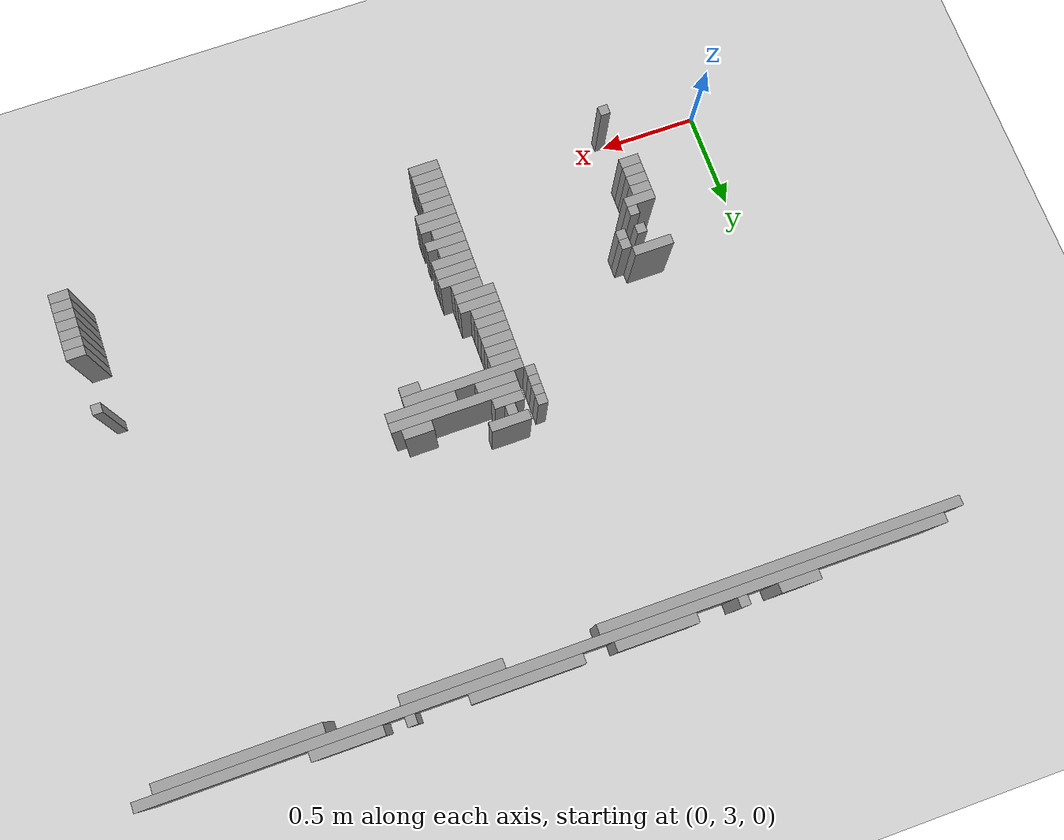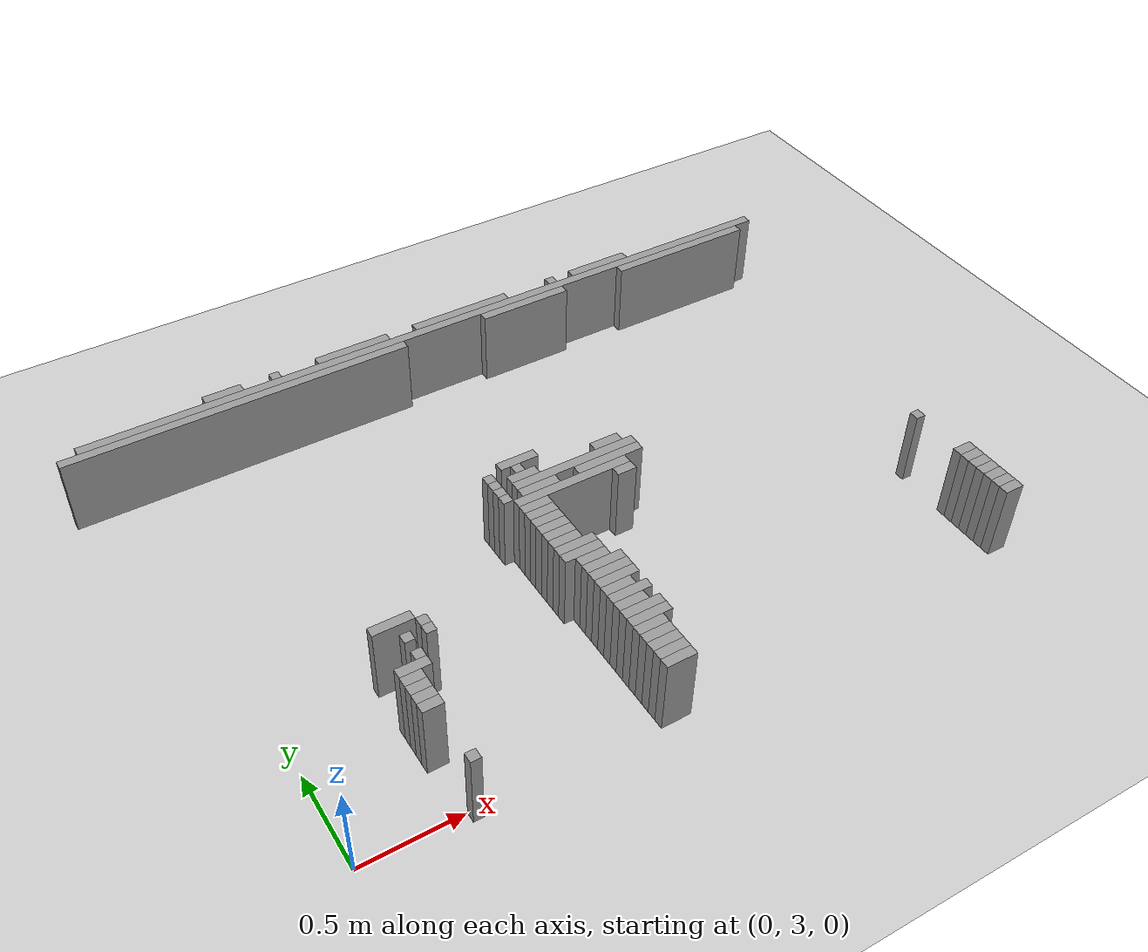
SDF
<sdf version="1.6">
 <world name="parking_mission">
  <include><uri>model://sun</uri></include>
  <include><uri>model://ground_plane</uri></include>
  <model name="wall_2">
   <static>true</static>
   <pose>0.5000 5.4750 0.2000 0 0 0</pose>
   <link name="link">
    <collision name="collision">
     <geometry><box><size>0.2000 0.0500 0.4000</size></box></geometry>
     <surface>
      <contact><ode><kp>20000.0</kp><kd>10.0</kd><max_vel>0.5</max_vel><min_depth>0.001</min_depth></ode></contact>
      <friction><ode><mu>1.0</mu><mu2>1.0</mu2></ode></friction>
     </surface>
    </collision>
    <visual name="visual">
     <geometry><box><size>0.2000 0.0500 0.4000</size></box></geometry>
     <material>
      <script><name>Gazebo/Grey</name><uri>file://media/materials/scripts/gazebo.material</uri></script>
     </material>
    </visual>
   </link>
  </model>
  <model name="wall_3">
   <static>true</static>
   <pose>0.7750 5.4750 0.2000 0 0 0</pose>
   <link name="link">
    <collision name="collision">
     <geometry><box><size>0.0500 0.0500 0.4000</size></box></geometry>
     <surface>
      <contact><ode><kp>20000.0</kp><kd>10.0</kd><max_vel>0.5</max_vel><min_depth>0.001</min_depth></ode></contact>
      <friction><ode><mu>1.0</mu><mu2>1.0</mu2></ode></friction>
     </surface>
    </collision>
    <visual name="visual">
     <geometry><box><size>0.0500 0.0500 0.4000</size></box></geometry>
     <material>
      <script><name>Gazebo/Grey</name><uri>file://media/materials/scripts/gazebo.material</uri></script>
     </material>
    </visual>
   </link>
  </model>
  <model name="wall_4">
   <static>true</static>
   <pose>1.2000 5.4750 0.2000 0 0 0</pose>
   <link name="link">
    <collision name="collision">
     <geometry><box><size>0.4000 0.0500 0.4000</size></box></geometry>
     <surface>
      <contact><ode><kp>20000.0</kp><kd>10.0</kd><max_vel>0.5</max_vel><min_depth>0.001</min_depth></ode></contact>
      <friction><ode><mu>1.0</mu><mu2>1.0</mu2></ode></friction>
     </surface>
    </collision>
    <visual name="visual">
     <geometry><box><size>0.4000 0.0500 0.4000</size></box></geometry>
     <material>
      <script><name>Gazebo/Grey</name><uri>file://media/materials/scripts/gazebo.material</uri></script>
     </material>
    </visual>
   </link>
  </model>
  <model name="wall_5">
   <static>true</static>
   <pose>1.8250 5.4750 0.2000 0 0 0</pose>
   <link name="link">
    <collision name="collision">
     <geometry><box><size>0.5500 0.0500 0.4000</size></box></geometry>
     <surface>
      <contact><ode><kp>20000.0</kp><kd>10.0</kd><max_vel>0.5</max_vel><min_depth>0.001</min_depth></ode></contact>
      <friction><ode><mu>1.0</mu><mu2>1.0</mu2></ode></friction>
     </surface>
    </collision>
    <visual name="visual">
     <geometry><box><size>0.5500 0.0500 0.4000</size></box></geometry>
     <material>
      <script><name>Gazebo/Grey</name><uri>file://media/materials/scripts/gazebo.material</uri></script>
     </material>
    </visual>
   </link>
  </model>
  <model name="wall_6">
   <static>true</static>
   <pose>2.3750 5.4750 0.2000 0 0 0</pose>
   <link name="link">
    <collision name="collision">
     <geometry><box><size>0.0500 0.0500 0.4000</size></box></geometry>
     <surface>
      <contact><ode><kp>20000.0</kp><kd>10.0</kd><max_vel>0.5</max_vel><min_depth>0.001</min_depth></ode></contact>
      <friction><ode><mu>1.0</mu><mu2>1.0</mu2></ode></friction>
     </surface>
    </collision>
    <visual name="visual">
     <geometry><box><size>0.0500 0.0500 0.4000</size></box></geometry>
     <material>
      <script><name>Gazebo/Grey</name><uri>file://media/materials/scripts/gazebo.material</uri></script>
     </material>
    </visual>
   </link>
  </model>
  <model name="wall_7">
   <static>true</static>
   <pose>2.6750 5.4750 0.2000 0 0 0</pose>
   <link name="link">
    <collision name="collision">
     <geometry><box><size>0.3500 0.0500 0.4000</size></box></geometry>
     <surface>
      <contact><ode><kp>20000.0</kp><kd>10.0</kd><max_vel>0.5</max_vel><min_depth>0.001</min_depth></ode></contact>
      <friction><ode><mu>1.0</mu><mu2>1.0</mu2></ode></friction>
     </surface>
    </collision>
    <visual name="visual">
     <geometry><box><size>0.3500 0.0500 0.4000</size></box></geometry>
     <material>
      <script><name>Gazebo/Grey</name><uri>file://media/materials/scripts/gazebo.material</uri></script>
     </material>
    </visual>
   </link>
  </model>
  <model name="wall_9">
   <static>true</static>
   <pose>1.7000 5.4250 0.2000 0 0 0</pose>
   <link name="link">
    <collision name="collision">
     <geometry><box><size>3.9000 0.0500 0.4000</size></box></geometry>
     <surface>
      <contact><ode><kp>20000.0</kp><kd>10.0</kd><max_vel>0.5</max_vel><min_depth>0.001</min_depth></ode></contact>
      <friction><ode><mu>1.0</mu><mu2>1.0</mu2></ode></friction>
     </surface>
    </collision>
    <visual name="visual">
     <geometry><box><size>3.9000 0.0500 0.4000</size></box></geometry>
     <material>
      <script><name>Gazebo/Grey</name><uri>file://media/materials/scripts/gazebo.material</uri></script>
     </material>
    </visual>
   </link>
  </model>
  <model name="wall_10">
   <static>true</static>
   <pose>0.5500 5.3750 0.2000 0 0 0</pose>
   <link name="link">
    <collision name="collision">
     <geometry><box><size>1.8000 0.0500 0.4000</size></box></geometry>
     <surface>
      <contact><ode><kp>20000.0</kp><kd>10.0</kd><max_vel>0.5</max_vel><min_depth>0.001</min_depth></ode></contact>
      <friction><ode><mu>1.0</mu><mu2>1.0</mu2></ode></friction>
     </surface>
    </collision>
    <visual name="visual">
     <geometry><box><size>1.8000 0.0500 0.4000</size></box></geometry>
     <material>
      <script><name>Gazebo/Grey</name><uri>file://media/materials/scripts/gazebo.material</uri></script>
     </material>
    </visual>
   </link>
  </model>
  <model name="wall_11">
   <static>true</static>
   <pose>2.1500 5.3750 0.2000 0 0 0</pose>
   <link name="link">
    <collision name="collision">
     <geometry><box><size>0.5000 0.0500 0.4000</size></box></geometry>
     <surface>
      <contact><ode><kp>20000.0</kp><kd>10.0</kd><max_vel>0.5</max_vel><min_depth>0.001</min_depth></ode></contact>
      <friction><ode><mu>1.0</mu><mu2>1.0</mu2></ode></friction>
     </surface>
    </collision>
    <visual name="visual">
     <geometry><box><size>0.5000 0.0500 0.4000</size></box></geometry>
     <material>
      <script><name>Gazebo/Grey</name><uri>file://media/materials/scripts/gazebo.material</uri></script>
     </material>
    </visual>
   </link>
  </model>
  <model name="wall_12">
   <static>true</static>
   <pose>3.1500 5.3750 0.2000 0 0 0</pose>
   <link name="link">
    <collision name="collision">
     <geometry><box><size>0.8000 0.0500 0.4000</size></box></geometry>
     <surface>
      <contact><ode><kp>20000.0</kp><kd>10.0</kd><max_vel>0.5</max_vel><min_depth>0.001</min_depth></ode></contact>
      <friction><ode><mu>1.0</mu><mu2>1.0</mu2></ode></friction>
     </surface>
    </collision>
    <visual name="visual">
     <geometry><box><size>0.8000 0.0500 0.4000</size></box></geometry>
     <material>
      <script><name>Gazebo/Grey</name><uri>file://media/materials/scripts/gazebo.material</uri></script>
     </material>
    </visual>
   </link>
  </model>
  <model name="wall_67">
   <static>true</static>
   <pose>1.5000 4.3250 0.2000 0 0 0</pose>
   <link name="link">
    <collision name="collision">
     <geometry><box><size>0.2000 0.0500 0.4000</size></box></geometry>
     <surface>
      <contact><ode><kp>20000.0</kp><kd>10.0</kd><max_vel>0.5</max_vel><min_depth>0.001</min_depth></ode></contact>
      <friction><ode><mu>1.0</mu><mu2>1.0</mu2></ode></friction>
     </surface>
    </collision>
    <visual name="visual">
     <geometry><box><size>0.2000 0.0500 0.4000</size></box></geometry>
     <material>
      <script><name>Gazebo/Grey</name><uri>file://media/materials/scripts/gazebo.material</uri></script>
     </material>
    </visual>
   </link>
  </model>
  <model name="wall_70">
   <static>true</static>
   <pose>1.3250 4.2750 0.2000 0 0 0</pose>
   <link name="link">
    <collision name="collision">
     <geometry><box><size>0.0500 0.0500 0.4000</size></box></geometry>
     <surface>
      <contact><ode><kp>20000.0</kp><kd>10.0</kd><max_vel>0.5</max_vel><min_depth>0.001</min_depth></ode></contact>
      <friction><ode><mu>1.0</mu><mu2>1.0</mu2></ode></friction>
     </surface>
    </collision>
    <visual name="visual">
     <geometry><box><size>0.0500 0.0500 0.4000</size></box></geometry>
     <material>
      <script><name>Gazebo/Grey</name><uri>file://media/materials/scripts/gazebo.material</uri></script>
     </material>
    </visual>
   </link>
  </model>
  <model name="wall_71">
   <static>true</static>
   <pose>1.4750 4.2750 0.2000 0 0 0</pose>
   <link name="link">
    <collision name="collision">
     <geometry><box><size>0.0500 0.0500 0.4000</size></box></geometry>
     <surface>
      <contact><ode><kp>20000.0</kp><kd>10.0</kd><max_vel>0.5</max_vel><min_depth>0.001</min_depth></ode></contact>
      <friction><ode><mu>1.0</mu><mu2>1.0</mu2></ode></friction>
     </surface>
    </collision>
    <visual name="visual">
     <geometry><box><size>0.0500 0.0500 0.4000</size></box></geometry>
     <material>
      <script><name>Gazebo/Grey</name><uri>file://media/materials/scripts/gazebo.material</uri></script>
     </material>
    </visual>
   </link>
  </model>
  <model name="wall_75">
   <static>true</static>
   <pose>1.3250 4.2250 0.2000 0 0 0</pose>
   <link name="link">
    <collision name="collision">
     <geometry><box><size>0.0500 0.0500 0.4000</size></box></geometry>
     <surface>
      <contact><ode><kp>20000.0</kp><kd>10.0</kd><max_vel>0.5</max_vel><min_depth>0.001</min_depth></ode></contact>
      <friction><ode><mu>1.0</mu><mu2>1.0</mu2></ode></friction>
     </surface>
    </collision>
    <visual name="visual">
     <geometry><box><size>0.0500 0.0500 0.4000</size></box></geometry>
     <material>
      <script><name>Gazebo/Grey</name><uri>file://media/materials/scripts/gazebo.material</uri></script>
     </material>
    </visual>
   </link>
  </model>
  <model name="wall_76">
   <static>true</static>
   <pose>1.4750 4.2250 0.2000 0 0 0</pose>
   <link name="link">
    <collision name="collision">
     <geometry><box><size>0.1500 0.0500 0.4000</size></box></geometry>
     <surface>
      <contact><ode><kp>20000.0</kp><kd>10.0</kd><max_vel>0.5</max_vel><min_depth>0.001</min_depth></ode></contact>
      <friction><ode><mu>1.0</mu><mu2>1.0</mu2></ode></friction>
     </surface>
    </collision>
    <visual name="visual">
     <geometry><box><size>0.1500 0.0500 0.4000</size></box></geometry>
     <material>
      <script><name>Gazebo/Grey</name><uri>file://media/materials/scripts/gazebo.material</uri></script>
     </material>
    </visual>
   </link>
  </model>
  <model name="wall_77">
   <static>true</static>
   <pose>1.9250 4.2250 0.2000 0 0 0</pose>
   <link name="link">
    <collision name="collision">
     <geometry><box><size>0.1500 0.0500 0.4000</size></box></geometry>
     <surface>
      <contact><ode><kp>20000.0</kp><kd>10.0</kd><max_vel>0.5</max_vel><min_depth>0.001</min_depth></ode></contact>
      <friction><ode><mu>1.0</mu><mu2>1.0</mu2></ode></friction>
     </surface>
    </collision>
    <visual name="visual">
     <geometry><box><size>0.1500 0.0500 0.4000</size></box></geometry>
     <material>
      <script><name>Gazebo/Grey</name><uri>file://media/materials/scripts/gazebo.material</uri></script>
     </material>
    </visual>
   </link>
  </model>
  <model name="wall_81">
   <static>true</static>
   <pose>1.3250 4.1750 0.2000 0 0 0</pose>
   <link name="link">
    <collision name="collision">
     <geometry><box><size>0.0500 0.0500 0.4000</size></box></geometry>
     <surface>
      <contact><ode><kp>20000.0</kp><kd>10.0</kd><max_vel>0.5</max_vel><min_depth>0.001</min_depth></ode></contact>
      <friction><ode><mu>1.0</mu><mu2>1.0</mu2></ode></friction>
     </surface>
    </collision>
    <visual name="visual">
     <geometry><box><size>0.0500 0.0500 0.4000</size></box></geometry>
     <material>
      <script><name>Gazebo/Grey</name><uri>file://media/materials/scripts/gazebo.material</uri></script>
     </material>
    </visual>
   </link>
  </model>
  <model name="wall_82">
   <static>true</static>
   <pose>1.7250 4.1750 0.2000 0 0 0</pose>
   <link name="link">
    <collision name="collision">
     <geometry><box><size>0.6500 0.0500 0.4000</size></box></geometry>
     <surface>
      <contact><ode><kp>20000.0</kp><kd>10.0</kd><max_vel>0.5</max_vel><min_depth>0.001</min_depth></ode></contact>
      <friction><ode><mu>1.0</mu><mu2>1.0</mu2></ode></friction>
     </surface>
    </collision>
    <visual name="visual">
     <geometry><box><size>0.6500 0.0500 0.4000</size></box></geometry>
     <material>
      <script><name>Gazebo/Grey</name><uri>file://media/materials/scripts/gazebo.material</uri></script>
     </material>
    </visual>
   </link>
  </model>
  <model name="wall_86">
   <static>true</static>
   <pose>1.3250 4.1250 0.2000 0 0 0</pose>
   <link name="link">
    <collision name="collision">
     <geometry><box><size>0.0500 0.0500 0.4000</size></box></geometry>
     <surface>
      <contact><ode><kp>20000.0</kp><kd>10.0</kd><max_vel>0.5</max_vel><min_depth>0.001</min_depth></ode></contact>
      <friction><ode><mu>1.0</mu><mu2>1.0</mu2></ode></friction>
     </surface>
    </collision>
    <visual name="visual">
     <geometry><box><size>0.0500 0.0500 0.4000</size></box></geometry>
     <material>
      <script><name>Gazebo/Grey</name><uri>file://media/materials/scripts/gazebo.material</uri></script>
     </material>
    </visual>
   </link>
  </model>
  <model name="wall_87">
   <static>true</static>
   <pose>1.5000 4.1250 0.2000 0 0 0</pose>
   <link name="link">
    <collision name="collision">
     <geometry><box><size>0.2000 0.0500 0.4000</size></box></geometry>
     <surface>
      <contact><ode><kp>20000.0</kp><kd>10.0</kd><max_vel>0.5</max_vel><min_depth>0.001</min_depth></ode></contact>
      <friction><ode><mu>1.0</mu><mu2>1.0</mu2></ode></friction>
     </surface>
    </collision>
    <visual name="visual">
     <geometry><box><size>0.2000 0.0500 0.4000</size></box></geometry>
     <material>
      <script><name>Gazebo/Grey</name><uri>file://media/materials/scripts/gazebo.material</uri></script>
     </material>
    </visual>
   </link>
  </model>
  <model name="wall_88">
   <static>true</static>
   <pose>1.8750 4.1250 0.2000 0 0 0</pose>
   <link name="link">
    <collision name="collision">
     <geometry><box><size>0.3500 0.0500 0.4000</size></box></geometry>
     <surface>
      <contact><ode><kp>20000.0</kp><kd>10.0</kd><max_vel>0.5</max_vel><min_depth>0.001</min_depth></ode></contact>
      <friction><ode><mu>1.0</mu><mu2>1.0</mu2></ode></friction>
     </surface>
    </collision>
    <visual name="visual">
     <geometry><box><size>0.3500 0.0500 0.4000</size></box></geometry>
     <material>
      <script><name>Gazebo/Grey</name><uri>file://media/materials/scripts/gazebo.material</uri></script>
     </material>
    </visual>
   </link>
  </model>
  <model name="wall_91">
   <static>true</static>
   <pose>1.6500 4.0750 0.2000 0 0 0</pose>
   <link name="link">
    <collision name="collision">
     <geometry><box><size>0.6000 0.0500 0.4000</size></box></geometry>
     <surface>
      <contact><ode><kp>20000.0</kp><kd>10.0</kd><max_vel>0.5</max_vel><min_depth>0.001</min_depth></ode></contact>
      <friction><ode><mu>1.0</mu><mu2>1.0</mu2></ode></friction>
     </surface>
    </collision>
    <visual name="visual">
     <geometry><box><size>0.6000 0.0500 0.4000</size></box></geometry>
     <material>
      <script><name>Gazebo/Grey</name><uri>file://media/materials/scripts/gazebo.material</uri></script>
     </material>
    </visual>
   </link>
  </model>
  <model name="wall_94">
   <static>true</static>
   <pose>1.4250 4.0250 0.2000 0 0 0</pose>
   <link name="link">
    <collision name="collision">
     <geometry><box><size>0.1500 0.0500 0.4000</size></box></geometry>
     <surface>
      <contact><ode><kp>20000.0</kp><kd>10.0</kd><max_vel>0.5</max_vel><min_depth>0.001</min_depth></ode></contact>
      <friction><ode><mu>1.0</mu><mu2>1.0</mu2></ode></friction>
     </surface>
    </collision>
    <visual name="visual">
     <geometry><box><size>0.1500 0.0500 0.4000</size></box></geometry>
     <material>
      <script><name>Gazebo/Grey</name><uri>file://media/materials/scripts/gazebo.material</uri></script>
     </material>
    </visual>
   </link>
  </model>
  <model name="wall_95">
   <static>true</static>
   <pose>1.9000 4.0250 0.2000 0 0 0</pose>
   <link name="link">
    <collision name="collision">
     <geometry><box><size>0.1000 0.0500 0.4000</size></box></geometry>
     <surface>
      <contact><ode><kp>20000.0</kp><kd>10.0</kd><max_vel>0.5</max_vel><min_depth>0.001</min_depth></ode></contact>
      <friction><ode><mu>1.0</mu><mu2>1.0</mu2></ode></friction>
     </surface>
    </collision>
    <visual name="visual">
     <geometry><box><size>0.1000 0.0500 0.4000</size></box></geometry>
     <material>
      <script><name>Gazebo/Grey</name><uri>file://media/materials/scripts/gazebo.material</uri></script>
     </material>
    </visual>
   </link>
  </model>
  <model name="wall_98">
   <static>true</static>
   <pose>1.4250 3.9750 0.2000 0 0 0</pose>
   <link name="link">
    <collision name="collision">
     <geometry><box><size>0.1500 0.0500 0.4000</size></box></geometry>
     <surface>
      <contact><ode><kp>20000.0</kp><kd>10.0</kd><max_vel>0.5</max_vel><min_depth>0.001</min_depth></ode></contact>
      <friction><ode><mu>1.0</mu><mu2>1.0</mu2></ode></friction>
     </surface>
    </collision>
    <visual name="visual">
     <geometry><box><size>0.1500 0.0500 0.4000</size></box></geometry>
     <material>
      <script><name>Gazebo/Grey</name><uri>file://media/materials/scripts/gazebo.material</uri></script>
     </material>
    </visual>
   </link>
  </model>
  <model name="wall_101">
   <static>true</static>
   <pose>1.4250 3.9250 0.2000 0 0 0</pose>
   <link name="link">
    <collision name="collision">
     <geometry><box><size>0.1500 0.0500 0.4000</size></box></geometry>
     <surface>
      <contact><ode><kp>20000.0</kp><kd>10.0</kd><max_vel>0.5</max_vel><min_depth>0.001</min_depth></ode></contact>
      <friction><ode><mu>1.0</mu><mu2>1.0</mu2></ode></friction>
     </surface>
    </collision>
    <visual name="visual">
     <geometry><box><size>0.1500 0.0500 0.4000</size></box></geometry>
     <material>
      <script><name>Gazebo/Grey</name><uri>file://media/materials/scripts/gazebo.material</uri></script>
     </material>
    </visual>
   </link>
  </model>
  <model name="wall_104">
   <static>true</static>
   <pose>1.4250 3.8750 0.2000 0 0 0</pose>
   <link name="link">
    <collision name="collision">
     <geometry><box><size>0.1500 0.0500 0.4000</size></box></geometry>
     <surface>
      <contact><ode><kp>20000.0</kp><kd>10.0</kd><max_vel>0.5</max_vel><min_depth>0.001</min_depth></ode></contact>
      <friction><ode><mu>1.0</mu><mu2>1.0</mu2></ode></friction>
     </surface>
    </collision>
    <visual name="visual">
     <geometry><box><size>0.1500 0.0500 0.4000</size></box></geometry>
     <material>
      <script><name>Gazebo/Grey</name><uri>file://media/materials/scripts/gazebo.material</uri></script>
     </material>
    </visual>
   </link>
  </model>
  <model name="wall_107">
   <static>true</static>
   <pose>1.4250 3.8250 0.2000 0 0 0</pose>
   <link name="link">
    <collision name="collision">
     <geometry><box><size>0.1500 0.0500 0.4000</size></box></geometry>
     <surface>
      <contact><ode><kp>20000.0</kp><kd>10.0</kd><max_vel>0.5</max_vel><min_depth>0.001</min_depth></ode></contact>
      <friction><ode><mu>1.0</mu><mu2>1.0</mu2></ode></friction>
     </surface>
    </collision>
    <visual name="visual">
     <geometry><box><size>0.1500 0.0500 0.4000</size></box></geometry>
     <material>
      <script><name>Gazebo/Grey</name><uri>file://media/materials/scripts/gazebo.material</uri></script>
     </material>
    </visual>
   </link>
  </model>
  <model name="wall_111">
   <static>true</static>
   <pose>1.4250 3.7750 0.2000 0 0 0</pose>
   <link name="link">
    <collision name="collision">
     <geometry><box><size>0.1500 0.0500 0.4000</size></box></geometry>
     <surface>
      <contact><ode><kp>20000.0</kp><kd>10.0</kd><max_vel>0.5</max_vel><min_depth>0.001</min_depth></ode></contact>
      <friction><ode><mu>1.0</mu><mu2>1.0</mu2></ode></friction>
     </surface>
    </collision>
    <visual name="visual">
     <geometry><box><size>0.1500 0.0500 0.4000</size></box></geometry>
     <material>
      <script><name>Gazebo/Grey</name><uri>file://media/materials/scripts/gazebo.material</uri></script>
     </material>
    </visual>
   </link>
  </model>
  <model name="wall_116">
   <static>true</static>
   <pose>0.5500 3.7250 0.2000 0 0 0</pose>
   <link name="link">
    <collision name="collision">
     <geometry><box><size>0.2000 0.0500 0.4000</size></box></geometry>
     <surface>
      <contact><ode><kp>20000.0</kp><kd>10.0</kd><max_vel>0.5</max_vel><min_depth>0.001</min_depth></ode></contact>
      <friction><ode><mu>1.0</mu><mu2>1.0</mu2></ode></friction>
     </surface>
    </collision>
    <visual name="visual">
     <geometry><box><size>0.2000 0.0500 0.4000</size></box></geometry>
     <material>
      <script><name>Gazebo/Grey</name><uri>file://media/materials/scripts/gazebo.material</uri></script>
     </material>
    </visual>
   </link>
  </model>
  <model name="wall_117">
   <static>true</static>
   <pose>1.4500 3.7250 0.2000 0 0 0</pose>
   <link name="link">
    <collision name="collision">
     <geometry><box><size>0.2000 0.0500 0.4000</size></box></geometry>
     <surface>
      <contact><ode><kp>20000.0</kp><kd>10.0</kd><max_vel>0.5</max_vel><min_depth>0.001</min_depth></ode></contact>
      <friction><ode><mu>1.0</mu><mu2>1.0</mu2></ode></friction>
     </surface>
    </collision>
    <visual name="visual">
     <geometry><box><size>0.2000 0.0500 0.4000</size></box></geometry>
     <material>
      <script><name>Gazebo/Grey</name><uri>file://media/materials/scripts/gazebo.material</uri></script>
     </material>
    </visual>
   </link>
  </model>
  <model name="wall_121">
   <static>true</static>
   <pose>0.6750 3.6750 0.2000 0 0 0</pose>
   <link name="link">
    <collision name="collision">
     <geometry><box><size>0.0500 0.0500 0.4000</size></box></geometry>
     <surface>
      <contact><ode><kp>20000.0</kp><kd>10.0</kd><max_vel>0.5</max_vel><min_depth>0.001</min_depth></ode></contact>
      <friction><ode><mu>1.0</mu><mu2>1.0</mu2></ode></friction>
     </surface>
    </collision>
    <visual name="visual">
     <geometry><box><size>0.0500 0.0500 0.4000</size></box></geometry>
     <material>
      <script><name>Gazebo/Grey</name><uri>file://media/materials/scripts/gazebo.material</uri></script>
     </material>
    </visual>
   </link>
  </model>
  <model name="wall_122">
   <static>true</static>
   <pose>1.4500 3.6750 0.2000 0 0 0</pose>
   <link name="link">
    <collision name="collision">
     <geometry><box><size>0.2000 0.0500 0.4000</size></box></geometry>
     <surface>
      <contact><ode><kp>20000.0</kp><kd>10.0</kd><max_vel>0.5</max_vel><min_depth>0.001</min_depth></ode></contact>
      <friction><ode><mu>1.0</mu><mu2>1.0</mu2></ode></friction>
     </surface>
    </collision>
    <visual name="visual">
     <geometry><box><size>0.2000 0.0500 0.4000</size></box></geometry>
     <material>
      <script><name>Gazebo/Grey</name><uri>file://media/materials/scripts/gazebo.material</uri></script>
     </material>
    </visual>
   </link>
  </model>
  <model name="wall_127">
   <static>true</static>
   <pose>0.5750 3.6250 0.2000 0 0 0</pose>
   <link name="link">
    <collision name="collision">
     <geometry><box><size>0.0500 0.0500 0.4000</size></box></geometry>
     <surface>
      <contact><ode><kp>20000.0</kp><kd>10.0</kd><max_vel>0.5</max_vel><min_depth>0.001</min_depth></ode></contact>
      <friction><ode><mu>1.0</mu><mu2>1.0</mu2></ode></friction>
     </surface>
    </collision>
    <visual name="visual">
     <geometry><box><size>0.0500 0.0500 0.4000</size></box></geometry>
     <material>
      <script><name>Gazebo/Grey</name><uri>file://media/materials/scripts/gazebo.material</uri></script>
     </material>
    </visual>
   </link>
  </model>
  <model name="wall_128">
   <static>true</static>
   <pose>0.6750 3.6250 0.2000 0 0 0</pose>
   <link name="link">
    <collision name="collision">
     <geometry><box><size>0.0500 0.0500 0.4000</size></box></geometry>
     <surface>
      <contact><ode><kp>20000.0</kp><kd>10.0</kd><max_vel>0.5</max_vel><min_depth>0.001</min_depth></ode></contact>
      <friction><ode><mu>1.0</mu><mu2>1.0</mu2></ode></friction>
     </surface>
    </collision>
    <visual name="visual">
     <geometry><box><size>0.0500 0.0500 0.4000</size></box></geometry>
     <material>
      <script><name>Gazebo/Grey</name><uri>file://media/materials/scripts/gazebo.material</uri></script>
     </material>
    </visual>
   </link>
  </model>
  <model name="wall_129">
   <static>true</static>
   <pose>1.4750 3.6250 0.2000 0 0 0</pose>
   <link name="link">
    <collision name="collision">
     <geometry><box><size>0.1500 0.0500 0.4000</size></box></geometry>
     <surface>
      <contact><ode><kp>20000.0</kp><kd>10.0</kd><max_vel>0.5</max_vel><min_depth>0.001</min_depth></ode></contact>
      <friction><ode><mu>1.0</mu><mu2>1.0</mu2></ode></friction>
     </surface>
    </collision>
    <visual name="visual">
     <geometry><box><size>0.1500 0.0500 0.4000</size></box></geometry>
     <material>
      <script><name>Gazebo/Grey</name><uri>file://media/materials/scripts/gazebo.material</uri></script>
     </material>
    </visual>
   </link>
  </model>
  <model name="wall_130">
   <static>true</static>
   <pose>3.3250 3.6250 0.2000 0 0 0</pose>
   <link name="link">
    <collision name="collision">
     <geometry><box><size>0.0500 0.0500 0.4000</size></box></geometry>
     <surface>
      <contact><ode><kp>20000.0</kp><kd>10.0</kd><max_vel>0.5</max_vel><min_depth>0.001</min_depth></ode></contact>
      <friction><ode><mu>1.0</mu><mu2>1.0</mu2></ode></friction>
     </surface>
    </collision>
    <visual name="visual">
     <geometry><box><size>0.0500 0.0500 0.4000</size></box></geometry>
     <material>
      <script><name>Gazebo/Grey</name><uri>file://media/materials/scripts/gazebo.material</uri></script>
     </material>
    </visual>
   </link>
  </model>
  <model name="wall_136">
   <static>true</static>
   <pose>1.5000 3.5750 0.2000 0 0 0</pose>
   <link name="link">
    <collision name="collision">
     <geometry><box><size>0.2000 0.0500 0.4000</size></box></geometry>
     <surface>
      <contact><ode><kp>20000.0</kp><kd>10.0</kd><max_vel>0.5</max_vel><min_depth>0.001</min_depth></ode></contact>
      <friction><ode><mu>1.0</mu><mu2>1.0</mu2></ode></friction>
     </surface>
    </collision>
    <visual name="visual">
     <geometry><box><size>0.2000 0.0500 0.4000</size></box></geometry>
     <material>
      <script><name>Gazebo/Grey</name><uri>file://media/materials/scripts/gazebo.material</uri></script>
     </material>
    </visual>
   </link>
  </model>
  <model name="wall_142">
   <static>true</static>
   <pose>0.5750 3.5250 0.2000 0 0 0</pose>
   <link name="link">
    <collision name="collision">
     <geometry><box><size>0.0500 0.0500 0.4000</size></box></geometry>
     <surface>
      <contact><ode><kp>20000.0</kp><kd>10.0</kd><max_vel>0.5</max_vel><min_depth>0.001</min_depth></ode></contact>
      <friction><ode><mu>1.0</mu><mu2>1.0</mu2></ode></friction>
     </surface>
    </collision>
    <visual name="visual">
     <geometry><box><size>0.0500 0.0500 0.4000</size></box></geometry>
     <material>
      <script><name>Gazebo/Grey</name><uri>file://media/materials/scripts/gazebo.material</uri></script>
     </material>
    </visual>
   </link>
  </model>
  <model name="wall_143">
   <static>true</static>
   <pose>1.5000 3.5250 0.2000 0 0 0</pose>
   <link name="link">
    <collision name="collision">
     <geometry><box><size>0.2000 0.0500 0.4000</size></box></geometry>
     <surface>
      <contact><ode><kp>20000.0</kp><kd>10.0</kd><max_vel>0.5</max_vel><min_depth>0.001</min_depth></ode></contact>
      <friction><ode><mu>1.0</mu><mu2>1.0</mu2></ode></friction>
     </surface>
    </collision>
    <visual name="visual">
     <geometry><box><size>0.2000 0.0500 0.4000</size></box></geometry>
     <material>
      <script><name>Gazebo/Grey</name><uri>file://media/materials/scripts/gazebo.material</uri></script>
     </material>
    </visual>
   </link>
  </model>
  <model name="wall_147">
   <static>true</static>
   <pose>0.5250 3.4750 0.2000 0 0 0</pose>
   <link name="link">
    <collision name="collision">
     <geometry><box><size>0.1500 0.0500 0.4000</size></box></geometry>
     <surface>
      <contact><ode><kp>20000.0</kp><kd>10.0</kd><max_vel>0.5</max_vel><min_depth>0.001</min_depth></ode></contact>
      <friction><ode><mu>1.0</mu><mu2>1.0</mu2></ode></friction>
     </surface>
    </collision>
    <visual name="visual">
     <geometry><box><size>0.1500 0.0500 0.4000</size></box></geometry>
     <material>
      <script><name>Gazebo/Grey</name><uri>file://media/materials/scripts/gazebo.material</uri></script>
     </material>
    </visual>
   </link>
  </model>
  <model name="wall_148">
   <static>true</static>
   <pose>1.5000 3.4750 0.2000 0 0 0</pose>
   <link name="link">
    <collision name="collision">
     <geometry><box><size>0.2000 0.0500 0.4000</size></box></geometry>
     <surface>
      <contact><ode><kp>20000.0</kp><kd>10.0</kd><max_vel>0.5</max_vel><min_depth>0.001</min_depth></ode></contact>
      <friction><ode><mu>1.0</mu><mu2>1.0</mu2></ode></friction>
     </surface>
    </collision>
    <visual name="visual">
     <geometry><box><size>0.2000 0.0500 0.4000</size></box></geometry>
     <material>
      <script><name>Gazebo/Grey</name><uri>file://media/materials/scripts/gazebo.material</uri></script>
     </material>
    </visual>
   </link>
  </model>
  <model name="wall_152">
   <static>true</static>
   <pose>0.5000 3.4250 0.2000 0 0 0</pose>
   <link name="link">
    <collision name="collision">
     <geometry><box><size>0.1000 0.0500 0.4000</size></box></geometry>
     <surface>
      <contact><ode><kp>20000.0</kp><kd>10.0</kd><max_vel>0.5</max_vel><min_depth>0.001</min_depth></ode></contact>
      <friction><ode><mu>1.0</mu><mu2>1.0</mu2></ode></friction>
     </surface>
    </collision>
    <visual name="visual">
     <geometry><box><size>0.1000 0.0500 0.4000</size></box></geometry>
     <material>
      <script><name>Gazebo/Grey</name><uri>file://media/materials/scripts/gazebo.material</uri></script>
     </material>
    </visual>
   </link>
  </model>
  <model name="wall_153">
   <static>true</static>
   <pose>1.4750 3.4250 0.2000 0 0 0</pose>
   <link name="link">
    <collision name="collision">
     <geometry><box><size>0.1500 0.0500 0.4000</size></box></geometry>
     <surface>
      <contact><ode><kp>20000.0</kp><kd>10.0</kd><max_vel>0.5</max_vel><min_depth>0.001</min_depth></ode></contact>
      <friction><ode><mu>1.0</mu><mu2>1.0</mu2></ode></friction>
     </surface>
    </collision>
    <visual name="visual">
     <geometry><box><size>0.1500 0.0500 0.4000</size></box></geometry>
     <material>
      <script><name>Gazebo/Grey</name><uri>file://media/materials/scripts/gazebo.material</uri></script>
     </material>
    </visual>
   </link>
  </model>
  <model name="wall_157">
   <static>true</static>
   <pose>0.5000 3.3750 0.2000 0 0 0</pose>
   <link name="link">
    <collision name="collision">
     <geometry><box><size>0.1000 0.0500 0.4000</size></box></geometry>
     <surface>
      <contact><ode><kp>20000.0</kp><kd>10.0</kd><max_vel>0.5</max_vel><min_depth>0.001</min_depth></ode></contact>
      <friction><ode><mu>1.0</mu><mu2>1.0</mu2></ode></friction>
     </surface>
    </collision>
    <visual name="visual">
     <geometry><box><size>0.1000 0.0500 0.4000</size></box></geometry>
     <material>
      <script><name>Gazebo/Grey</name><uri>file://media/materials/scripts/gazebo.material</uri></script>
     </material>
    </visual>
   </link>
  </model>
  <model name="wall_158">
   <static>true</static>
   <pose>1.5000 3.3750 0.2000 0 0 0</pose>
   <link name="link">
    <collision name="collision">
     <geometry><box><size>0.2000 0.0500 0.4000</size></box></geometry>
     <surface>
      <contact><ode><kp>20000.0</kp><kd>10.0</kd><max_vel>0.5</max_vel><min_depth>0.001</min_depth></ode></contact>
      <friction><ode><mu>1.0</mu><mu2>1.0</mu2></ode></friction>
     </surface>
    </collision>
    <visual name="visual">
     <geometry><box><size>0.2000 0.0500 0.4000</size></box></geometry>
     <material>
      <script><name>Gazebo/Grey</name><uri>file://media/materials/scripts/gazebo.material</uri></script>
     </material>
    </visual>
   </link>
  </model>
  <model name="wall_162">
   <static>true</static>
   <pose>0.5000 3.3250 0.2000 0 0 0</pose>
   <link name="link">
    <collision name="collision">
     <geometry><box><size>0.1000 0.0500 0.4000</size></box></geometry>
     <surface>
      <contact><ode><kp>20000.0</kp><kd>10.0</kd><max_vel>0.5</max_vel><min_depth>0.001</min_depth></ode></contact>
      <friction><ode><mu>1.0</mu><mu2>1.0</mu2></ode></friction>
     </surface>
    </collision>
    <visual name="visual">
     <geometry><box><size>0.1000 0.0500 0.4000</size></box></geometry>
     <material>
      <script><name>Gazebo/Grey</name><uri>file://media/materials/scripts/gazebo.material</uri></script>
     </material>
    </visual>
   </link>
  </model>
  <model name="wall_163">
   <static>true</static>
   <pose>1.4750 3.3250 0.2000 0 0 0</pose>
   <link name="link">
    <collision name="collision">
     <geometry><box><size>0.1500 0.0500 0.4000</size></box></geometry>
     <surface>
      <contact><ode><kp>20000.0</kp><kd>10.0</kd><max_vel>0.5</max_vel><min_depth>0.001</min_depth></ode></contact>
      <friction><ode><mu>1.0</mu><mu2>1.0</mu2></ode></friction>
     </surface>
    </collision>
    <visual name="visual">
     <geometry><box><size>0.1500 0.0500 0.4000</size></box></geometry>
     <material>
      <script><name>Gazebo/Grey</name><uri>file://media/materials/scripts/gazebo.material</uri></script>
     </material>
    </visual>
   </link>
  </model>
  <model name="wall_164">
   <static>true</static>
   <pose>3.3500 3.3250 0.2000 0 0 0</pose>
   <link name="link">
    <collision name="collision">
     <geometry><box><size>0.1000 0.0500 0.4000</size></box></geometry>
     <surface>
      <contact><ode><kp>20000.0</kp><kd>10.0</kd><max_vel>0.5</max_vel><min_depth>0.001</min_depth></ode></contact>
      <friction><ode><mu>1.0</mu><mu2>1.0</mu2></ode></friction>
     </surface>
    </collision>
    <visual name="visual">
     <geometry><box><size>0.1000 0.0500 0.4000</size></box></geometry>
     <material>
      <script><name>Gazebo/Grey</name><uri>file://media/materials/scripts/gazebo.material</uri></script>
     </material>
    </visual>
   </link>
  </model>
  <model name="wall_167">
   <static>true</static>
   <pose>0.5000 3.2750 0.2000 0 0 0</pose>
   <link name="link">
    <collision name="collision">
     <geometry><box><size>0.1000 0.0500 0.4000</size></box></geometry>
     <surface>
      <contact><ode><kp>20000.0</kp><kd>10.0</kd><max_vel>0.5</max_vel><min_depth>0.001</min_depth></ode></contact>
      <friction><ode><mu>1.0</mu><mu2>1.0</mu2></ode></friction>
     </surface>
    </collision>
    <visual name="visual">
     <geometry><box><size>0.1000 0.0500 0.4000</size></box></geometry>
     <material>
      <script><name>Gazebo/Grey</name><uri>file://media/materials/scripts/gazebo.material</uri></script>
     </material>
    </visual>
   </link>
  </model>
  <model name="wall_168">
   <static>true</static>
   <pose>1.5000 3.2750 0.2000 0 0 0</pose>
   <link name="link">
    <collision name="collision">
     <geometry><box><size>0.2000 0.0500 0.4000</size></box></geometry>
     <surface>
      <contact><ode><kp>20000.0</kp><kd>10.0</kd><max_vel>0.5</max_vel><min_depth>0.001</min_depth></ode></contact>
      <friction><ode><mu>1.0</mu><mu2>1.0</mu2></ode></friction>
     </surface>
    </collision>
    <visual name="visual">
     <geometry><box><size>0.2000 0.0500 0.4000</size></box></geometry>
     <material>
      <script><name>Gazebo/Grey</name><uri>file://media/materials/scripts/gazebo.material</uri></script>
     </material>
    </visual>
   </link>
  </model>
  <model name="wall_169">
   <static>true</static>
   <pose>3.3500 3.2750 0.2000 0 0 0</pose>
   <link name="link">
    <collision name="collision">
     <geometry><box><size>0.1000 0.0500 0.4000</size></box></geometry>
     <surface>
      <contact><ode><kp>20000.0</kp><kd>10.0</kd><max_vel>0.5</max_vel><min_depth>0.001</min_depth></ode></contact>
      <friction><ode><mu>1.0</mu><mu2>1.0</mu2></ode></friction>
     </surface>
    </collision>
    <visual name="visual">
     <geometry><box><size>0.1000 0.0500 0.4000</size></box></geometry>
     <material>
      <script><name>Gazebo/Grey</name><uri>file://media/materials/scripts/gazebo.material</uri></script>
     </material>
    </visual>
   </link>
  </model>
  <model name="wall_173">
   <static>true</static>
   <pose>1.5000 3.2250 0.2000 0 0 0</pose>
   <link name="link">
    <collision name="collision">
     <geometry><box><size>0.2000 0.0500 0.4000</size></box></geometry>
     <surface>
      <contact><ode><kp>20000.0</kp><kd>10.0</kd><max_vel>0.5</max_vel><min_depth>0.001</min_depth></ode></contact>
      <friction><ode><mu>1.0</mu><mu2>1.0</mu2></ode></friction>
     </surface>
    </collision>
    <visual name="visual">
     <geometry><box><size>0.2000 0.0500 0.4000</size></box></geometry>
     <material>
      <script><name>Gazebo/Grey</name><uri>file://media/materials/scripts/gazebo.material</uri></script>
     </material>
    </visual>
   </link>
  </model>
  <model name="wall_174">
   <static>true</static>
   <pose>3.3500 3.2250 0.2000 0 0 0</pose>
   <link name="link">
    <collision name="collision">
     <geometry><box><size>0.1000 0.0500 0.4000</size></box></geometry>
     <surface>
      <contact><ode><kp>20000.0</kp><kd>10.0</kd><max_vel>0.5</max_vel><min_depth>0.001</min_depth></ode></contact>
      <friction><ode><mu>1.0</mu><mu2>1.0</mu2></ode></friction>
     </surface>
    </collision>
    <visual name="visual">
     <geometry><box><size>0.1000 0.0500 0.4000</size></box></geometry>
     <material>
      <script><name>Gazebo/Grey</name><uri>file://media/materials/scripts/gazebo.material</uri></script>
     </material>
    </visual>
   </link>
  </model>
  <model name="wall_177">
   <static>true</static>
   <pose>1.4750 3.1750 0.2000 0 0 0</pose>
   <link name="link">
    <collision name="collision">
     <geometry><box><size>0.1500 0.0500 0.4000</size></box></geometry>
     <surface>
      <contact><ode><kp>20000.0</kp><kd>10.0</kd><max_vel>0.5</max_vel><min_depth>0.001</min_depth></ode></contact>
      <friction><ode><mu>1.0</mu><mu2>1.0</mu2></ode></friction>
     </surface>
    </collision>
    <visual name="visual">
     <geometry><box><size>0.1500 0.0500 0.4000</size></box></geometry>
     <material>
      <script><name>Gazebo/Grey</name><uri>file://media/materials/scripts/gazebo.material</uri></script>
     </material>
    </visual>
   </link>
  </model>
  <model name="wall_178">
   <static>true</static>
   <pose>3.3500 3.1750 0.2000 0 0 0</pose>
   <link name="link">
    <collision name="collision">
     <geometry><box><size>0.1000 0.0500 0.4000</size></box></geometry>
     <surface>
      <contact><ode><kp>20000.0</kp><kd>10.0</kd><max_vel>0.5</max_vel><min_depth>0.001</min_depth></ode></contact>
      <friction><ode><mu>1.0</mu><mu2>1.0</mu2></ode></friction>
     </surface>
    </collision>
    <visual name="visual">
     <geometry><box><size>0.1000 0.0500 0.4000</size></box></geometry>
     <material>
      <script><name>Gazebo/Grey</name><uri>file://media/materials/scripts/gazebo.material</uri></script>
     </material>
    </visual>
   </link>
  </model>
  <model name="wall_181">
   <static>true</static>
   <pose>1.4750 3.1250 0.2000 0 0 0</pose>
   <link name="link">
    <collision name="collision">
     <geometry><box><size>0.1500 0.0500 0.4000</size></box></geometry>
     <surface>
      <contact><ode><kp>20000.0</kp><kd>10.0</kd><max_vel>0.5</max_vel><min_depth>0.001</min_depth></ode></contact>
      <friction><ode><mu>1.0</mu><mu2>1.0</mu2></ode></friction>
     </surface>
    </collision>
    <visual name="visual">
     <geometry><box><size>0.1500 0.0500 0.4000</size></box></geometry>
     <material>
      <script><name>Gazebo/Grey</name><uri>file://media/materials/scripts/gazebo.material</uri></script>
     </material>
    </visual>
   </link>
  </model>
  <model name="wall_182">
   <static>true</static>
   <pose>3.3500 3.1250 0.2000 0 0 0</pose>
   <link name="link">
    <collision name="collision">
     <geometry><box><size>0.1000 0.0500 0.4000</size></box></geometry>
     <surface>
      <contact><ode><kp>20000.0</kp><kd>10.0</kd><max_vel>0.5</max_vel><min_depth>0.001</min_depth></ode></contact>
      <friction><ode><mu>1.0</mu><mu2>1.0</mu2></ode></friction>
     </surface>
    </collision>
    <visual name="visual">
     <geometry><box><size>0.1000 0.0500 0.4000</size></box></geometry>
     <material>
      <script><name>Gazebo/Grey</name><uri>file://media/materials/scripts/gazebo.material</uri></script>
     </material>
    </visual>
   </link>
  </model>
  <model name="wall_185">
   <static>true</static>
   <pose>1.4750 3.0750 0.2000 0 0 0</pose>
   <link name="link">
    <collision name="collision">
     <geometry><box><size>0.1500 0.0500 0.4000</size></box></geometry>
     <surface>
      <contact><ode><kp>20000.0</kp><kd>10.0</kd><max_vel>0.5</max_vel><min_depth>0.001</min_depth></ode></contact>
      <friction><ode><mu>1.0</mu><mu2>1.0</mu2></ode></friction>
     </surface>
    </collision>
    <visual name="visual">
     <geometry><box><size>0.1500 0.0500 0.4000</size></box></geometry>
     <material>
      <script><name>Gazebo/Grey</name><uri>file://media/materials/scripts/gazebo.material</uri></script>
     </material>
    </visual>
   </link>
  </model>
  <model name="wall_186">
   <static>true</static>
   <pose>3.3500 3.0750 0.2000 0 0 0</pose>
   <link name="link">
    <collision name="collision">
     <geometry><box><size>0.1000 0.0500 0.4000</size></box></geometry>
     <surface>
      <contact><ode><kp>20000.0</kp><kd>10.0</kd><max_vel>0.5</max_vel><min_depth>0.001</min_depth></ode></contact>
      <friction><ode><mu>1.0</mu><mu2>1.0</mu2></ode></friction>
     </surface>
    </collision>
    <visual name="visual">
     <geometry><box><size>0.1000 0.0500 0.4000</size></box></geometry>
     <material>
      <script><name>Gazebo/Grey</name><uri>file://media/materials/scripts/gazebo.material</uri></script>
     </material>
    </visual>
   </link>
  </model>
  <model name="wall_189">
   <static>true</static>
   <pose>1.4750 3.0250 0.2000 0 0 0</pose>
   <link name="link">
    <collision name="collision">
     <geometry><box><size>0.1500 0.0500 0.4000</size></box></geometry>
     <surface>
      <contact><ode><kp>20000.0</kp><kd>10.0</kd><max_vel>0.5</max_vel><min_depth>0.001</min_depth></ode></contact>
      <friction><ode><mu>1.0</mu><mu2>1.0</mu2></ode></friction>
     </surface>
    </collision>
    <visual name="visual">
     <geometry><box><size>0.1500 0.0500 0.4000</size></box></geometry>
     <material>
      <script><name>Gazebo/Grey</name><uri>file://media/materials/scripts/gazebo.material</uri></script>
     </material>
    </visual>
   </link>
  </model>
  <model name="wall_190">
   <static>true</static>
   <pose>3.3500 3.0250 0.2000 0 0 0</pose>
   <link name="link">
    <collision name="collision">
     <geometry><box><size>0.1000 0.0500 0.4000</size></box></geometry>
     <surface>
      <contact><ode><kp>20000.0</kp><kd>10.0</kd><max_vel>0.5</max_vel><min_depth>0.001</min_depth></ode></contact>
      <friction><ode><mu>1.0</mu><mu2>1.0</mu2></ode></friction>
     </surface>
    </collision>
    <visual name="visual">
     <geometry><box><size>0.1000 0.0500 0.4000</size></box></geometry>
     <material>
      <script><name>Gazebo/Grey</name><uri>file://media/materials/scripts/gazebo.material</uri></script>
     </material>
    </visual>
   </link>
  </model>
  <model name="wall_192">
   <static>true</static>
   <pose>0.5250 2.9750 0.2000 0 0 0</pose>
   <link name="link">
    <collision name="collision">
     <geometry><box><size>0.0500 0.0500 0.4000</size></box></geometry>
     <surface>
      <contact><ode><kp>20000.0</kp><kd>10.0</kd><max_vel>0.5</max_vel><min_depth>0.001</min_depth></ode></contact>
      <friction><ode><mu>1.0</mu><mu2>1.0</mu2></ode></friction>
     </surface>
    </collision>
    <visual name="visual">
     <geometry><box><size>0.0500 0.0500 0.4000</size></box></geometry>
     <material>
      <script><name>Gazebo/Grey</name><uri>file://media/materials/scripts/gazebo.material</uri></script>
     </material>
    </visual>
   </link>
  </model>
  <model name="wall_193">
   <static>true</static>
   <pose>1.4750 2.9750 0.2000 0 0 0</pose>
   <link name="link">
    <collision name="collision">
     <geometry><box><size>0.1500 0.0500 0.4000</size></box></geometry>
     <surface>
      <contact><ode><kp>20000.0</kp><kd>10.0</kd><max_vel>0.5</max_vel><min_depth>0.001</min_depth></ode></contact>
      <friction><ode><mu>1.0</mu><mu2>1.0</mu2></ode></friction>
     </surface>
    </collision>
    <visual name="visual">
     <geometry><box><size>0.1500 0.0500 0.4000</size></box></geometry>
     <material>
      <script><name>Gazebo/Grey</name><uri>file://media/materials/scripts/gazebo.material</uri></script>
     </material>
    </visual>
   </link>
  </model>
 </world>
</sdf>
